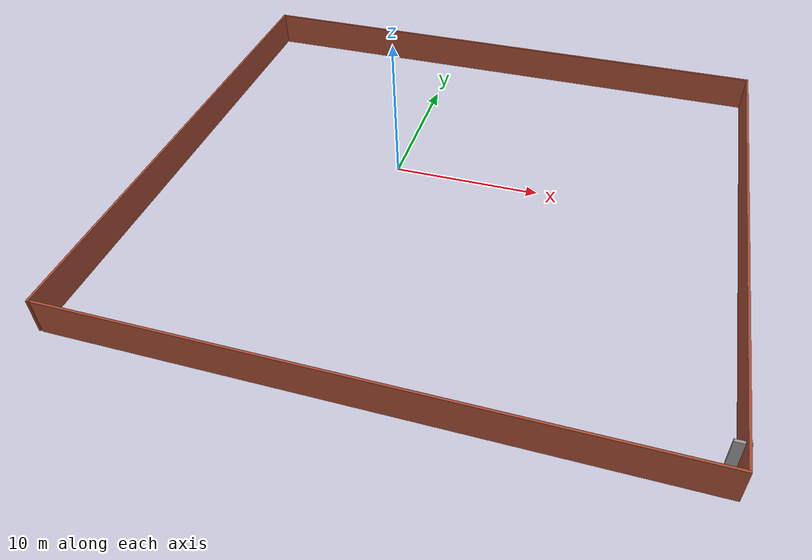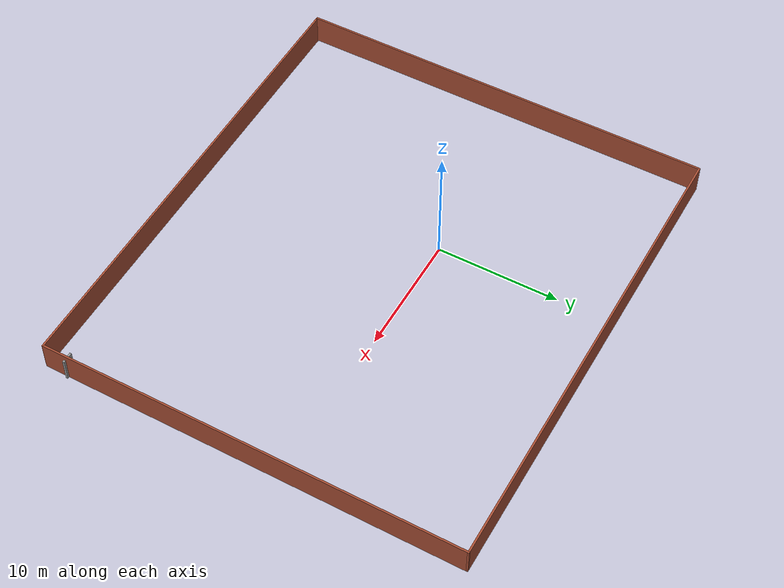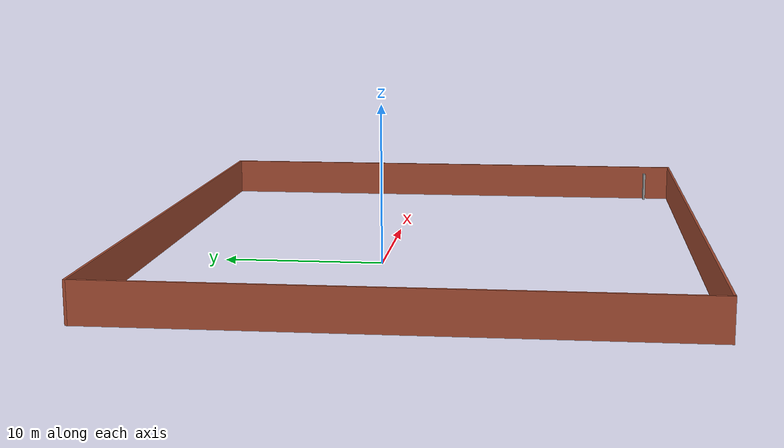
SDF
<?xml version='1.0'?>
<sdf version='1.7'>
  <model name='my_warehouse'>
    <pose>4.1699 -2.46203 0 0 -0 0</pose>
    <link name='Door_1'>
      <collision name='Door_1_Collision'>
        <geometry>
          <box>
            <size>0.9 0.17 2</size>
          </box>
        </geometry>
        <pose>0 0 1 0 -0 0</pose>
      </collision>
      <visual name='Door_1_Visual'>
        <pose>0 0 1 0 -0 0</pose>
        <geometry>
          <box>
            <size>0.9 0.17 2</size>
          </box>
        </geometry>
        <material>
          <script>
            <uri>file://media/materials/scripts/gazebo.material</uri>
            <name>Gazebo/Grey</name>
          </script>
        </material>
      </visual>
      <pose>19.0936 -15.3153 0 0 -0 0</pose>
    </link>
    <link name='Wall_20'>
      <collision name='Wall_20_Collision'>
        <geometry>
          <box>
            <size>38.5 0.15 2.5</size>
          </box>
        </geometry>
        <pose>0 0 1.25 0 -0 0</pose>
      </collision>
      <visual name='Wall_20_Visual'>
        <pose>0 0 1.25 0 -0 0</pose>
        <geometry>
          <box>
            <size>38.5 0.15 2.5</size>
          </box>
        </geometry>
        <material>
          <script>
            <uri>file://media/materials/scripts/gazebo.material</uri>
            <name>Gazebo/Bricks</name>
          </script>
          <ambient>1 1 1 1</ambient>
        </material>
        <meta>
          <layer>0</layer>
        </meta>
      </visual>
      <pose>0.125 -17.175 0 0 -0 0</pose>
    </link>
    <link name='Wall_21'>
      <collision name='Wall_21_Collision'>
        <geometry>
          <box>
            <size>34.5 0.15 2.5</size>
          </box>
        </geometry>
        <pose>0 0 1.25 0 -0 0</pose>
      </collision>
      <visual name='Wall_21_Visual'>
        <pose>0 0 1.25 0 -0 0</pose>
        <geometry>
          <box>
            <size>34.5 0.15 2.5</size>
          </box>
        </geometry>
        <material>
          <script>
            <uri>file://media/materials/scripts/gazebo.material</uri>
            <name>Gazebo/Bricks</name>
          </script>
          <ambient>1 1 1 1</ambient>
        </material>
        <meta>
          <layer>0</layer>
        </meta>
      </visual>
      <pose>19.3 0 0 0 -0 1.5708</pose>
    </link>
    <link name='Wall_22'>
      <collision name='Wall_22_Collision'>
        <geometry>
          <box>
            <size>38.75 0.15 2.5</size>
          </box>
        </geometry>
        <pose>0 0 1.25 0 -0 0</pose>
      </collision>
      <visual name='Wall_22_Visual'>
        <pose>0 0 1.25 0 -0 0</pose>
        <geometry>
          <box>
            <size>38.75 0.15 2.5</size>
          </box>
        </geometry>
        <material>
          <script>
            <uri>file://media/materials/scripts/gazebo.material</uri>
            <name>Gazebo/Bricks</name>
          </script>
          <ambient>1 1 1 1</ambient>
        </material>
        <meta>
          <layer>0</layer>
        </meta>
      </visual>
      <pose>-0 17.175 0 0 -0 3.14159</pose>
    </link>
    <link name='Wall_23'>
      <collision name='Wall_23_Collision'>
        <geometry>
          <box>
            <size>34.5 0.15 2.5</size>
          </box>
        </geometry>
        <pose>0 0 1.25 0 -0 0</pose>
      </collision>
      <visual name='Wall_23_Visual'>
        <pose>0 0 1.25 0 -0 0</pose>
        <geometry>
          <box>
            <size>34.5 0.15 2.5</size>
          </box>
        </geometry>
        <material>
          <script>
            <uri>file://media/materials/scripts/gazebo.material</uri>
            <name>Gazebo/Bricks</name>
          </script>
          <ambient>1 1 1 1</ambient>
        </material>
        <meta>
          <layer>0</layer>
        </meta>
      </visual>
      <pose>-19.3 0 0 0 -0 -1.5708</pose>
    </link>
    <static>1</static>
  </model>
</sdf>
